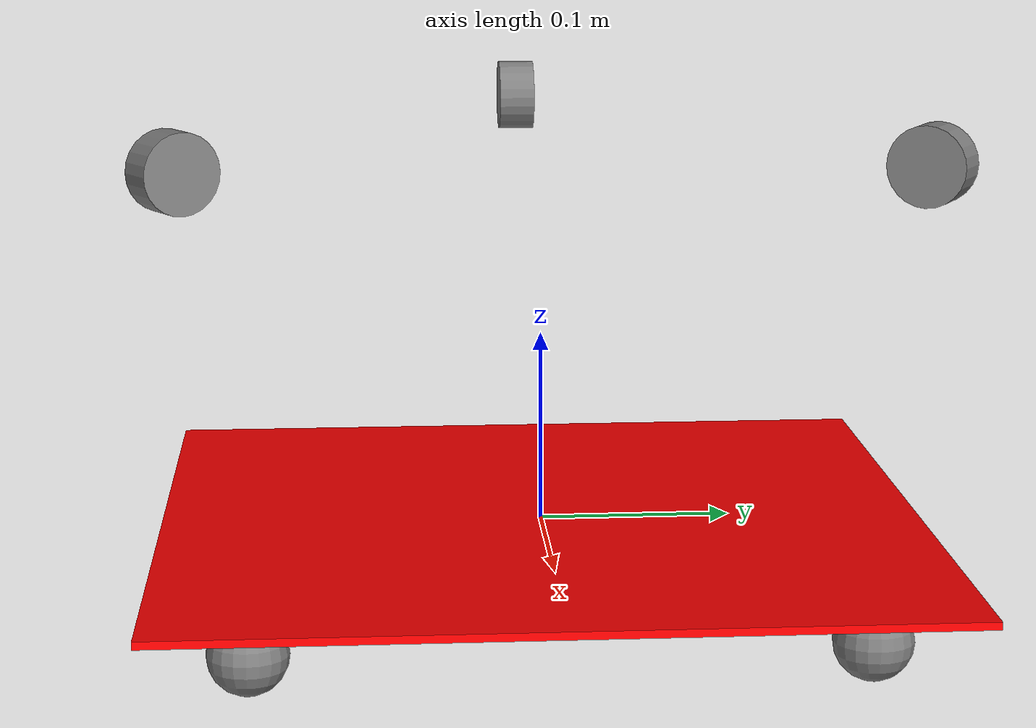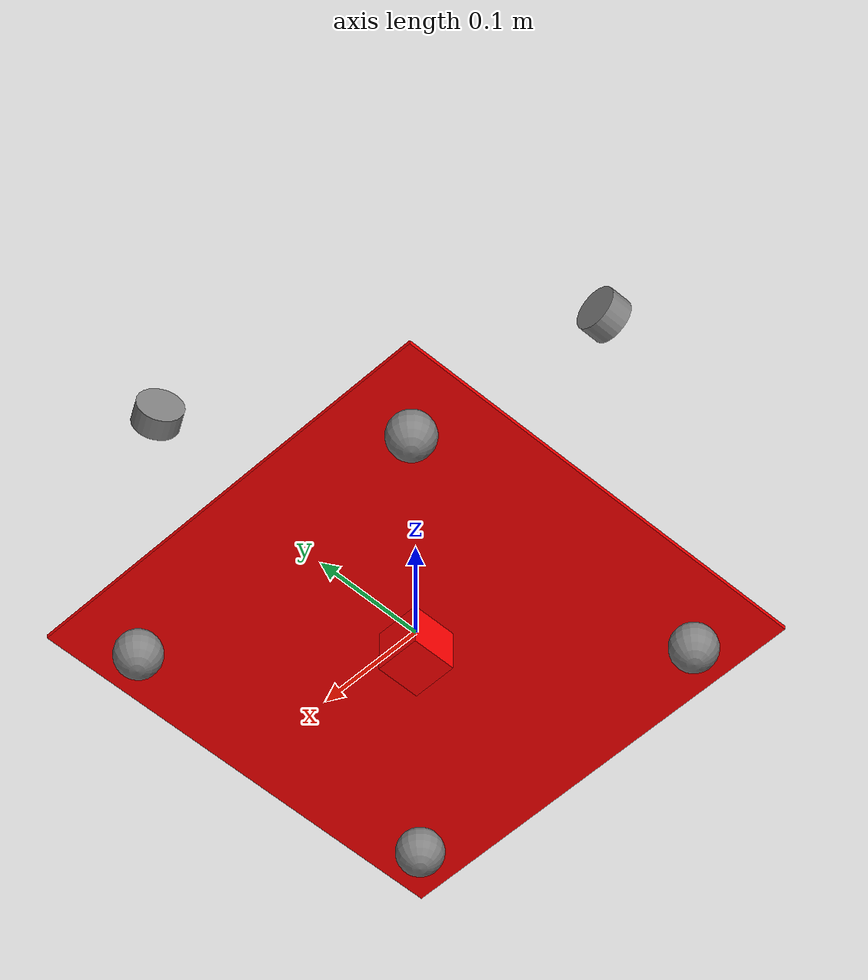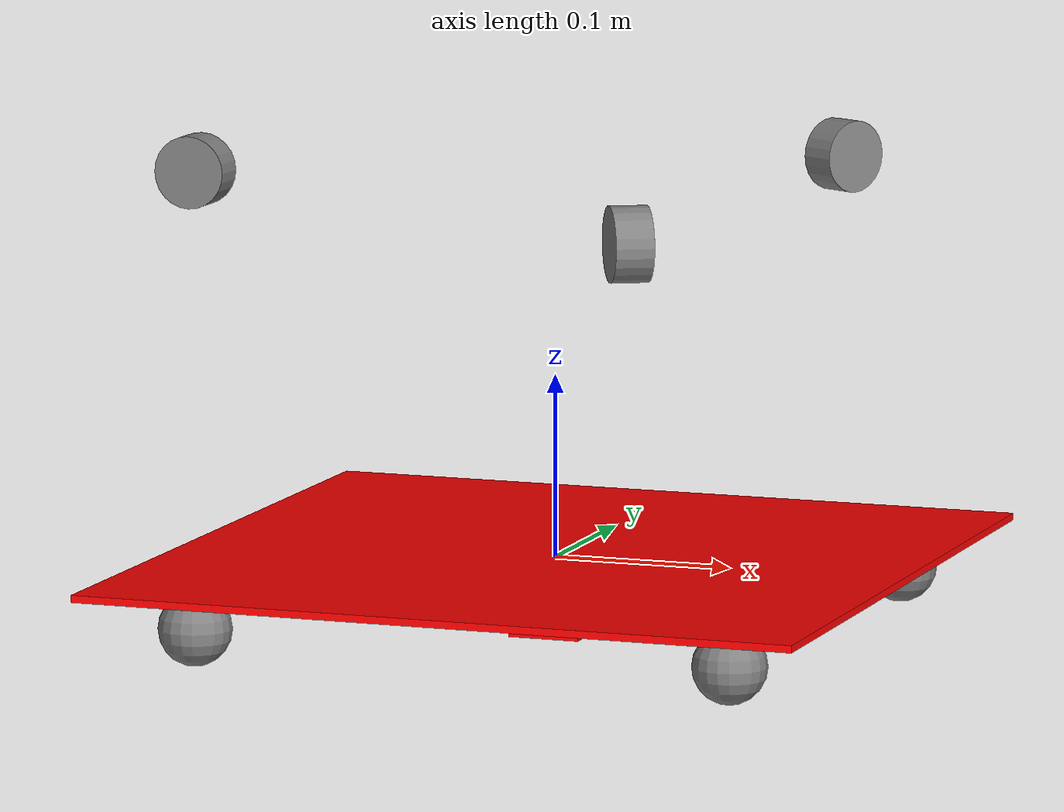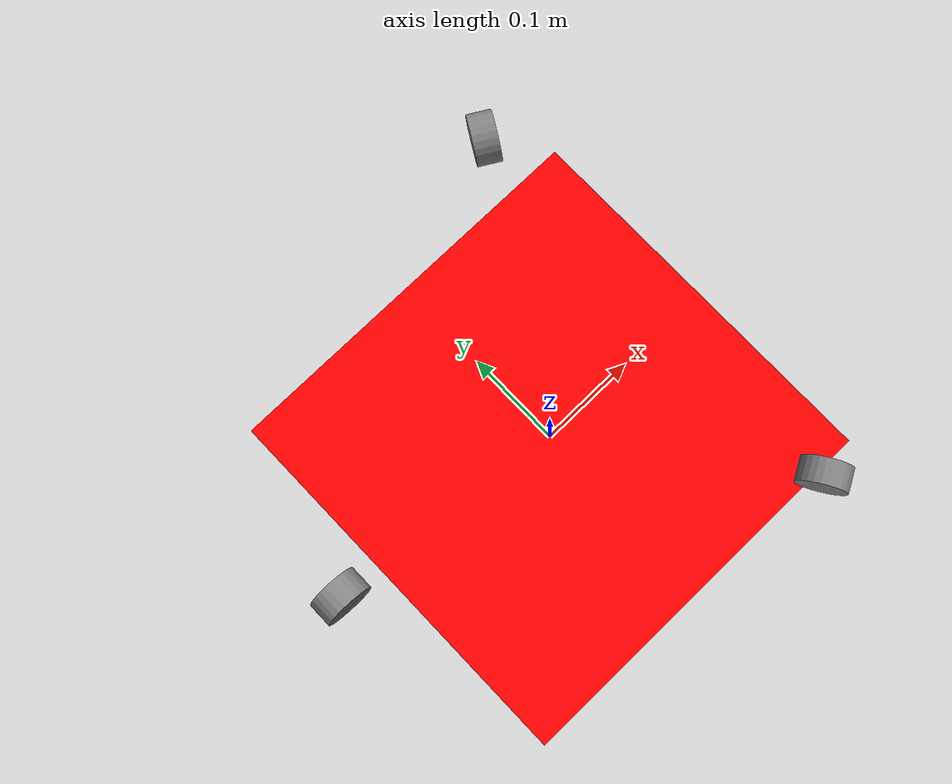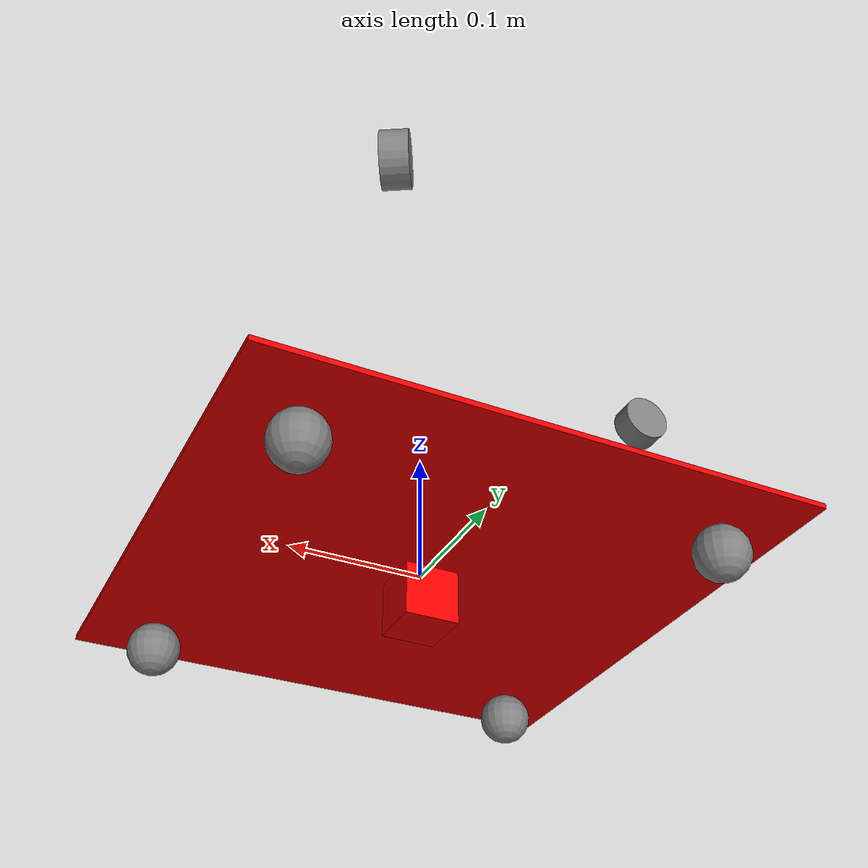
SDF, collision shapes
<sdf version="1.9">
  <model name="omnifancar">
    <link name="base_link">
      <inertial>
        <pose>0 0 0 0 0 0</pose>
        <mass>1.5</mass>
        <inertia>
          <ixx>0.009375</ixx>
          <ixy>0</ixy>
          <ixz>0</ixz>
          <iyy>0.009375</iyy>
          <iyz>0</iyz>
          <izz>0.009375</izz>
        </inertia>
      </inertial>

      <!-- base -->
      <collision name="base_collision">
        <geometry>
          <box>
            <size>0.4 0.4 0.004</size>
          </box>
        </geometry>
      </collision>
      <visual name="base_visual">
        <pose>0 0 0 0 0 0</pose>
        <geometry>
          <box>
            <size>0.4 0.4 0.004</size>
          </box>
        </geometry>
        <material>
          <ambient>1 0 0</ambient>
          <diffuse>1 0 0</diffuse>
          <specular>0.1 0.1 0.1</specular>
        </material>
      </visual>

      <!-- skid block for friction (ball joints have no friction atm -->
      <collision name="skid_collision">
        <pose>0 0 -0.022 0 0 0</pose>
        <geometry>
          <box>
            <size>0.04 0.04 0.04</size>
          </box>
        </geometry>
        <surface>
          <friction>
            <ode>
              <mu>0.1</mu>
              <mu2>0.1</mu2>
            </ode>
          </friction>
        </surface>
      </collision>

      <!-- frame -->
      <visual name="frame_1_visual">
        <pose degrees="true">0.05 -0.08660254 0.202 90 0 30</pose>
        <geometry>
          <cylinder>
            <radius>0.02</radius>
            <length>0.2</length>
          </cylinder>
        </geometry>
        <material>
          <ambient>0.1 0.1 0.1</ambient>
          <diffuse>0.1 0.1 0.1</diffuse>
          <specular>0.1 0.1 0.1</specular>
        </material>
      </visual>
      <visual name="frame_2_visual">
        <pose degrees="true">-0.1 0 0.202 0 90 0</pose>
        <geometry>
          <cylinder>
            <radius>0.02</radius>
            <length>0.2</length>
          </cylinder>
        </geometry>
        <material>
          <ambient>0.1 0.1 0.1</ambient>
          <diffuse>0.1 0.1 0.1</diffuse>
          <specular>0.1 0.1 0.1</specular>
        </material>
      </visual>
      <visual name="frame_3_visual">
        <pose degrees="true">0.05 0.086602545 0.202 90 0 -30</pose>
        <geometry>
          <cylinder>
            <radius>0.02</radius>
            <length>0.2</length>
          </cylinder>
        </geometry>
        <material>
          <ambient>0.1 0.1 0.1</ambient>
          <diffuse>0.1 0.1 0.1</diffuse>
          <specular>0.1 0.1 0.1</specular>
        </material>
      </visual>
      <visual name="frame_4_visual">
        <pose degrees="true">0 0 0.102 0 0 0</pose>
        <geometry>
          <cylinder>
            <radius>0.04</radius>
            <length>0.2</length>
          </cylinder>
        </geometry>
        <material>
          <ambient>0.1 0.1 0.1</ambient>
          <diffuse>0.1 0.1 0.1</diffuse>
          <specular>0.1 0.1 0.1</specular>
        </material>
      </visual>

      <!-- senors -->
      <sensor name="imu_sensor" type="imu">
        <pose degrees="true">0 0 0 180 0 0</pose>
        <always_on>1</always_on>
        <update_rate>1000.0</update_rate>
      </sensor>
    </link>

    <!-- wheels - for type ball, the friction element has no effect -->
    <link name="wheel_1_link">
      <pose>0.15 0.15 -0.022 0 0 0</pose>
      <inertial>
        <mass>0.263056025</mass>
        <inertia>
          <ixx>4.20890E-05</ixx>
          <ixy>0</ixy>
          <ixz>0</ixz>
          <iyy>4.20890E-05</iyy>
          <iyz>0</iyz>
          <izz>4.20890E-05</izz>
        </inertia>
      </inertial>
      <collision name="collision">
        <geometry>
          <sphere>
            <radius>0.02</radius>
          </sphere>
        </geometry>
      </collision>
      <visual name="visual">
        <geometry>
          <sphere>
            <radius>0.02</radius>
          </sphere>
        </geometry>
        <material>
          <ambient>0.5 0.5 0.5</ambient>
          <diffuse>0.5 0.5 0.5</diffuse>
          <specular>0.1 0.1 0.1</specular>
        </material>
      </visual>
    </link>
    <joint name="wheel_1_joint" type="ball">
      <parent>base_link</parent>
      <child>wheel_1_link</child>
      <axis>
        <xyz>0 0 1</xyz>
        <limit>
          <lower>-1.0e16</lower>
          <upper>1.0e16</upper>
        </limit>
        <dynamics>
          <damping>0.004</damping>
        </dynamics>
      </axis>
    </joint>

    <link name="wheel_2_link">
      <pose>-0.15 0.15 -0.022 0 0 0</pose>
      <inertial>
        <mass>0.263056025</mass>
        <inertia>
          <ixx>4.20890E-05</ixx>
          <ixy>0</ixy>
          <ixz>0</ixz>
          <iyy>4.20890E-05</iyy>
          <iyz>0</iyz>
          <izz>4.20890E-05</izz>
        </inertia>
      </inertial>
      <collision name="collision">
        <geometry>
          <sphere>
            <radius>0.02</radius>
          </sphere>
        </geometry>
      </collision>
      <visual name="visual">
        <geometry>
          <sphere>
            <radius>0.02</radius>
          </sphere>
        </geometry>
        <material>
          <ambient>0.5 0.5 0.5</ambient>
          <diffuse>0.5 0.5 0.5</diffuse>
          <specular>0.1 0.1 0.1</specular>
        </material>
      </visual>
    </link>
    <joint name="wheel_2_joint" type="ball">
      <parent>base_link</parent>
      <child>wheel_2_link</child>
      <axis>
        <xyz>0 0 1</xyz>
        <limit>
          <lower>-1.0e16</lower>
          <upper>1.0e16</upper>
        </limit>
        <dynamics>
          <damping>0.004</damping>
        </dynamics>
      </axis>
    </joint>

    <link name="wheel_3_link">
      <pose>-0.15 -0.15 -0.022 0 0 0</pose>
      <inertial>
        <mass>0.263056025</mass>
        <inertia>
          <ixx>4.20890E-05</ixx>
          <ixy>0</ixy>
          <ixz>0</ixz>
          <iyy>4.20890E-05</iyy>
          <iyz>0</iyz>
          <izz>4.20890E-05</izz>
        </inertia>
      </inertial>
      <collision name="collision">
        <geometry>
          <sphere>
            <radius>0.02</radius>
          </sphere>
        </geometry>
      </collision>
      <visual name="visual">
        <geometry>
          <sphere>
            <radius>0.02</radius>
          </sphere>
        </geometry>
        <material>
          <ambient>0.5 0.5 0.5</ambient>
          <diffuse>0.5 0.5 0.5</diffuse>
          <specular>0.1 0.1 0.1</specular>
        </material>
      </visual>
    </link>
    <joint name="wheel_3_joint" type="ball">
      <parent>base_link</parent>
      <child>wheel_3_link</child>
      <axis>
        <xyz>0 0 1</xyz>
        <limit>
          <lower>-1.0e16</lower>
          <upper>1.0e16</upper>
        </limit>
        <dynamics>
          <damping>0.004</damping>
        </dynamics>
      </axis>
    </joint>

    <link name="wheel_4_link">
      <pose>0.15 -0.15 -0.022 0 0 0</pose>
      <inertial>
        <mass>0.263056025</mass>
        <inertia>
          <ixx>4.20890E-05</ixx>
          <ixy>0</ixy>
          <ixz>0</ixz>
          <iyy>4.20890E-05</iyy>
          <iyz>0</iyz>
          <izz>4.20890E-05</izz>
        </inertia>
      </inertial>
      <collision name="collision">
        <geometry>
          <sphere>
            <radius>0.02</radius>
          </sphere>
        </geometry>
      </collision>
      <visual name="visual">
        <geometry>
          <sphere>
            <radius>0.02</radius>
          </sphere>
        </geometry>
        <material>
          <ambient>0.5 0.5 0.5</ambient>
          <diffuse>0.5 0.5 0.5</diffuse>
          <specular>0.1 0.1 0.1</specular>
        </material>
      </visual>
    </link>
    <joint name="wheel_4_joint" type="ball">
      <parent>base_link</parent>
      <child>wheel_4_link</child>
      <axis>
        <xyz>0 0 1</xyz>
        <limit>
          <lower>-1.0e16</lower>
          <upper>1.0e16</upper>
        </limit>
        <dynamics>
          <damping>0.004</damping>
        </dynamics>
      </axis>
    </joint>

    <link name="motor_1_link">
      <pose degrees="true">0.105 -0.181865 0.202 0 90 30</pose>
      <inertial>
        <mass>0.1</mass>
        <inertia>
          <ixx>1.33333E-05</ixx>
          <ixy>0</ixy>
          <ixz>0</ixz>
          <iyy>1.33333E-05</iyy>
          <iyz>0</iyz>
          <izz>0.00002</izz>
        </inertia>
      </inertial>
      <collision name="collision">
        <geometry>
          <cylinder>
            <radius>0.02</radius>
            <length>0.02</length>
          </cylinder>
        </geometry>
      </collision>
      <visual name="visual">
        <geometry>
          <cylinder>
            <radius>0.02</radius>
            <length>0.02</length>
          </cylinder>
        </geometry>
        <material>
          <ambient>0.5 0.5 0.5</ambient>
          <diffuse>0.5 0.5 0.5</diffuse>
          <specular>0.1 0.1 0.1</specular>
        </material>
      </visual>
      <visual name="prop_visual">
        <geometry>
          <mesh>
            <uri>model://omnifancar/meshes/iris_prop_ccw.dae</uri>
          </mesh>
        </geometry>
        <material>
          <ambient>0 0 1</ambient>
          <diffuse>0 0 1</diffuse>
          <specular>0.1 0.1 0.1</specular>
        </material>
      </visual>
    </link>
    <joint name="motor_1_joint" type="revolute">
      <parent>base_link</parent>
      <child>motor_1_link</child>
      <axis>
        <xyz>0 0 1</xyz>
        <limit>
          <lower>-1.0e16</lower>
          <upper>1.0e16</upper>
        </limit>
        <dynamics>
          <damping>0.004</damping>
        </dynamics>
      </axis>
    </joint>

    <link name="motor_2_link">
      <pose degrees="true">-0.21 0 0.202 180 90 90</pose>
      <inertial>
        <mass>0.1</mass>
        <inertia>
          <ixx>1.33333E-05</ixx>
          <ixy>0</ixy>
          <ixz>0</ixz>
          <iyy>1.33333E-05</iyy>
          <iyz>0</iyz>
          <izz>0.00002</izz>
        </inertia>
      </inertial>
      <collision name="collision">
        <geometry>
          <cylinder>
            <radius>0.02</radius>
            <length>0.02</length>
          </cylinder>
        </geometry>
      </collision>
      <visual name="visual">
        <geometry>
          <cylinder>
            <radius>0.02</radius>
            <length>0.02</length>
          </cylinder>
        </geometry>
        <material>
          <ambient>0.5 0.5 0.5</ambient>
          <diffuse>0.5 0.5 0.5</diffuse>
          <specular>0.1 0.1 0.1</specular>
        </material>
      </visual>
      <visual name="prop_visual">
        <geometry>
          <mesh>
            <uri>model://omnifancar/meshes/iris_prop_cw.dae</uri>
          </mesh>
        </geometry>
        <material>
          <ambient>0 1 0</ambient>
          <diffuse>0 1 0</diffuse>
          <specular>0.1 0.1 0.1</specular>
        </material>
      </visual>
    </link>
    <joint name="motor_2_joint" type="revolute">
      <parent>base_link</parent>
      <child>motor_2_link</child>
      <axis>
        <xyz>0 0 1</xyz>
        <limit>
          <lower>-1.0e16</lower>
          <upper>1.0e16</upper>
        </limit>
        <dynamics>
          <damping>0.004</damping>
        </dynamics>
      </axis>
    </joint>

    <link name="motor_3_link">
      <pose degrees="true">0.105 0.181865 0.202 0 90 -30</pose>
      <inertial>
        <mass>0.1</mass>
        <inertia>
          <ixx>1.33333E-05</ixx>
          <ixy>0</ixy>
          <ixz>0</ixz>
          <iyy>1.33333E-05</iyy>
          <iyz>0</iyz>
          <izz>0.00002</izz>
        </inertia>
      </inertial>
      <collision name="collision">
        <geometry>
          <cylinder>
            <radius>0.02</radius>
            <length>0.02</length>
          </cylinder>
        </geometry>
      </collision>
      <visual name="visual">
        <geometry>
          <cylinder>
            <radius>0.02</radius>
            <length>0.02</length>
          </cylinder>
        </geometry>
        <material>
          <ambient>0.5 0.5 0.5</ambient>
          <diffuse>0.5 0.5 0.5</diffuse>
          <specular>0.1 0.1 0.1</specular>
        </material>
      </visual>
      <visual name="prop_visual">
        <geometry>
          <mesh>
            <uri>model://omnifancar/meshes/iris_prop_ccw.dae</uri>
          </mesh>
        </geometry>
        <material>
          <ambient>0 0 1</ambient>
          <diffuse>0 0 1</diffuse>
          <specular>0.1 0.1 0.1</specular>
        </material>
      </visual>
    </link>
    <joint name="motor_3_joint" type="revolute">
      <parent>base_link</parent>
      <child>motor_3_link</child>
      <axis>
        <xyz>0 0 1</xyz>
        <limit>
          <lower>-1.0e16</lower>
          <upper>1.0e16</upper>
        </limit>
        <dynamics>
          <damping>0.004</damping>
        </dynamics>
      </axis>
    </joint>

    <!-- plugins -->
    <plugin name="gz::sim::systems::JointStatePublisher"
      filename="gz-sim-joint-state-publisher-system">
    </plugin>

    <plugin name="gz::sim::systems::JointController"
      filename="gz-sim-joint-controller-system">
      <joint_name>motor_1_joint</joint_name>
      <use_force_commands>1</use_force_commands>
      <topic>/model/omnifancar/joint/motor_1_joint/cmd_vel</topic>
      <initial_velocity>0.0</initial_velocity>
      <p_gain>0.01</p_gain>
    </plugin>
    <plugin name="gz::sim::systems::JointController"
      filename="gz-sim-joint-controller-system">
      <joint_name>motor_2_joint</joint_name>
      <use_force_commands>1</use_force_commands>
      <topic>/model/omnifancar/joint/motor_2_joint/cmd_vel</topic>
      <initial_velocity>0.0</initial_velocity>
      <p_gain>0.01</p_gain>
    </plugin>
    <plugin name="gz::sim::systems::JointController"
      filename="gz-sim-joint-controller-system">
      <joint_name>motor_3_joint</joint_name>
      <use_force_commands>1</use_force_commands>
      <topic>/model/omnifancar/joint/motor_3_joint/cmd_vel</topic>
      <initial_velocity>0.0</initial_velocity>
      <p_gain>0.01</p_gain>
    </plugin>

    <!-- motor 1 ccw -->
    <plugin name="gz::sim::systems::LiftDrag"
      filename="gz-sim-lift-drag-system">
      <a0>0.3</a0>
      <alpha_stall>1.4</alpha_stall>
      <cla>4.2500</cla>
      <cda>0.10</cda>
      <cma>0.0</cma>
      <cla_stall>-0.025</cla_stall>
      <cda_stall>0.0</cda_stall>
      <cma_stall>0.0</cma_stall>
      <area>0.002</area>
      <air_density>1.2041</air_density>
      <cp>0.084 0 0</cp>
      <forward>0 1 0</forward>
      <upward>0 0 1</upward>
      <link_name>motor_1_link</link_name>
    </plugin>
    <plugin name="gz::sim::systems::LiftDrag"
      filename="gz-sim-lift-drag-system">
      <a0>0.3</a0>
      <alpha_stall>1.4</alpha_stall>
      <cla>4.2500</cla>
      <cda>0.10</cda>
      <cma>0.0</cma>
      <cla_stall>-0.025</cla_stall>
      <cda_stall>0.0</cda_stall>
      <cma_stall>0.0</cma_stall>
      <area>0.002</area>
      <air_density>1.2041</air_density>
      <cp>-0.084 0 0</cp>
      <forward>0 -1 0</forward>
      <upward>0 0 1</upward>
      <link_name>motor_1_link</link_name>
    </plugin>

    <!-- motor 2 cw -->
    <plugin name="gz::sim::systems::LiftDrag"
      filename="gz-sim-lift-drag-system">
      <a0>0.3</a0>
      <alpha_stall>1.4</alpha_stall>
      <cla>4.2500</cla>
      <cda>0.10</cda>
      <cma>0.0</cma>
      <cla_stall>-0.025</cla_stall>
      <cda_stall>0.0</cda_stall>
      <cma_stall>0.0</cma_stall>
      <area>0.002</area>
      <air_density>1.2041</air_density>
      <cp>0.084 0 0</cp>
      <forward>0 -1 0</forward>
      <upward>0 0 1</upward>
      <link_name>motor_2_link</link_name>
    </plugin>
    <plugin name="gz::sim::systems::LiftDrag"
      filename="gz-sim-lift-drag-system">
      <a0>0.3</a0>
      <alpha_stall>1.4</alpha_stall>
      <cla>4.2500</cla>
      <cda>0.10</cda>
      <cma>0.0</cma>
      <cla_stall>-0.025</cla_stall>
      <cda_stall>0.0</cda_stall>
      <cma_stall>0.0</cma_stall>
      <area>0.002</area>
      <air_density>1.2041</air_density>
      <cp>-0.084 0 0</cp>
      <forward>0 1 0</forward>
      <upward>0 0 1</upward>
      <link_name>motor_2_link</link_name>
    </plugin>

    <!-- motor 3 ccw -->
    <plugin name="gz::sim::systems::LiftDrag"
      filename="gz-sim-lift-drag-system">
      <a0>0.3</a0>
      <alpha_stall>1.4</alpha_stall>
      <cla>4.2500</cla>
      <cda>0.10</cda>
      <cma>0.0</cma>
      <cla_stall>-0.025</cla_stall>
      <cda_stall>0.0</cda_stall>
      <cma_stall>0.0</cma_stall>
      <area>0.002</area>
      <air_density>1.2041</air_density>
      <cp>0.084 0 0</cp>
      <forward>0 1 0</forward>
      <upward>0 0 1</upward>
      <link_name>motor_3_link</link_name>
    </plugin>
    <plugin name="gz::sim::systems::LiftDrag"
      filename="gz-sim-lift-drag-system">
      <a0>0.3</a0>
      <alpha_stall>1.4</alpha_stall>
      <cla>4.2500</cla>
      <cda>0.10</cda>
      <cma>0.0</cma>
      <cla_stall>-0.025</cla_stall>
      <cda_stall>0.0</cda_stall>
      <cma_stall>0.0</cma_stall>
      <area>0.002</area>
      <air_density>1.2041</air_density>
      <cp>-0.084 0 0</cp>
      <forward>0 -1 0</forward>
      <upward>0 0 1</upward>
      <link_name>motor_3_link</link_name>
    </plugin>

    <plugin name="ArduPilotPlugin" filename="ArduPilotPlugin">
      <fdm_addr>127.0.0.1</fdm_addr>
      <fdm_port_in>9002</fdm_port_in>
      <connectionTimeoutMaxCount>5</connectionTimeoutMaxCount>
      <lock_step>1</lock_step>
      <modelXYZToAirplaneXForwardZDown degrees="true">0 0 0 180 0 0</modelXYZToAirplaneXForwardZDown>
      <gazeboXYZToNED degrees="true">0 0 0 180 0 90</gazeboXYZToNED>

      <imuName>base_link::imu_sensor</imuName>

      <control channel="0">
        <jointName>motor_1_joint</jointName>
        <useForce>1</useForce>
        <multiplier>1000</multiplier>
        <offset>-0.5</offset>
        <servo_min>1000</servo_min>
        <servo_max>2000</servo_max>
        <type>COMMAND</type>
        <cmd_topic>/model/omnifancar/joint/motor_1_joint/cmd_vel</cmd_topic>
      </control>

      <control channel="1">
        <jointName>motor_2_joint</jointName>
        <useForce>1</useForce>
        <multiplier>-1000</multiplier>
        <offset>-0.5</offset>
        <servo_min>1000</servo_min>
        <servo_max>2000</servo_max>
        <type>COMMAND</type>
        <cmd_topic>/model/omnifancar/joint/motor_2_joint/cmd_vel</cmd_topic>
      </control>

      <control channel="2">
        <jointName>motor_3_joint</jointName>
        <useForce>1</useForce>
        <multiplier>1000</multiplier>
        <offset>-0.5</offset>
        <servo_min>1000</servo_min>
        <servo_max>2000</servo_max>
        <type>COMMAND</type>
        <cmd_topic>/model/omnifancar/joint/motor_3_joint/cmd_vel</cmd_topic>
      </control>
    </plugin>

  </model>
</sdf>
